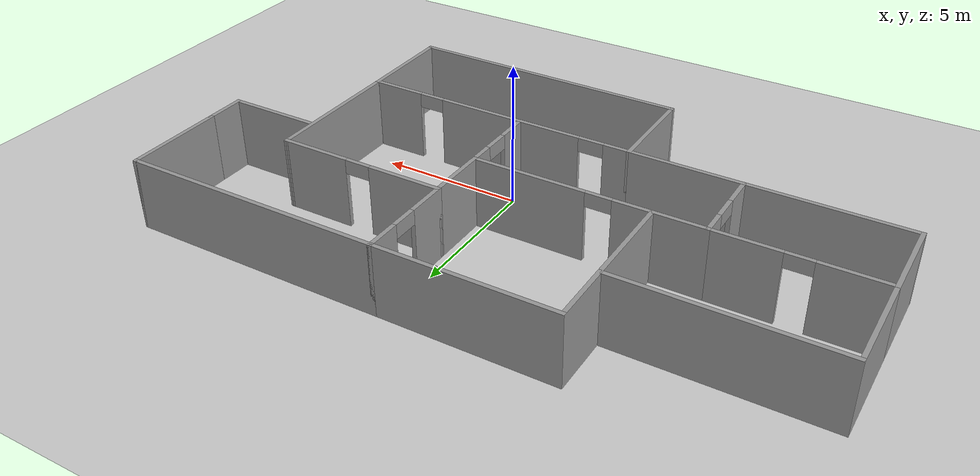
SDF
<sdf version="1.7">
 <world name="default">
  <light name="sun" type="directional">
   <pose>0 0 10 0 -0 0</pose>
   <diffuse>0.8 0.8 0.8 1</diffuse>
   <specular>0.2 0.2 0.2 1</specular>
   <attenuation>
    <range>1000</range>
    <constant>0.9</constant>
    <linear>0.01</linear>
    <quadratic>0.001</quadratic>
   </attenuation>
   <direction>-0.5 0.1 -0.9</direction>
   <spot><inner_angle>0</inner_angle><outer_angle>0</outer_angle><falloff>0</falloff></spot>
  </light>
  <model name="ground_plane">
   <static>1</static>
   <link name="link">
    <collision name="collision">
     <geometry><plane><normal>0 0 1</normal><size>100 100</size></plane></geometry>
     <surface>
      <contact><collide_bitmask>65535</collide_bitmask></contact>
      <friction><ode><mu>100</mu><mu2>50</mu2></ode></friction>
     </surface>
    </collision>
    <visual name="visual">
     <cast_shadows>0</cast_shadows>
     <geometry><plane><normal>0 0 1</normal><size>100 100</size></plane></geometry>
     <material>
      <script><uri>file://media/materials/scripts/gazebo.material</uri><name>Gazebo/Grey</name></script>
     </material>
    </visual>
   </link>
  </model>
  <gravity>0 0 -9.8</gravity>
  <magnetic_field>6e-06 2.3e-05 -4.2e-05</magnetic_field>
  <atmosphere type="adiabatic"/>
  <physics type="ode">
   <max_step_size>0.001</max_step_size>
   <real_time_factor>1</real_time_factor>
   <real_time_update_rate>1000</real_time_update_rate>
  </physics>
  <scene><ambient>0.4 0.4 0.4 1</ambient><background>0.7 0.7 0.7 1</background><shadows>1</shadows></scene>
  <spherical_coordinates>
   <surface_model>EARTH_WGS84</surface_model>
   <latitude_deg>0</latitude_deg>
   <longitude_deg>0</longitude_deg>
   <elevation>0</elevation>
   <heading_deg>0</heading_deg>
  </spherical_coordinates>
  <model name="big_house.worlds">
   <pose>-1.69749 1.44859 0 0 -0 0</pose>
   <link name="Wall_0">
    <pose>2.95249 -2.50859 0 0 -0 0</pose>
    <visual name="Wall_0_Visual_0">
     <pose>-4.51048 0 1.25 0 -0 0</pose>
     <geometry><box><size>0.979031 0.15 2.5</size></box></geometry>
     <material>
      <script><uri>file://media/materials/scripts/gazebo.material</uri><name>Gazebo/Grey</name></script>
      <ambient>1 1 1 1</ambient>
     </material>
     <meta><layer>0</layer></meta>
    </visual>
    <collision name="Wall_0_Collision_0">
     <geometry><box><size>0.979031 0.15 2.5</size></box></geometry>
     <pose>-4.51048 0 1.25 0 -0 0</pose>
    </collision>
    <visual name="Wall_0_Visual_1">
     <pose>-0.483973 0 1.25 0 -0 0</pose>
     <geometry><box><size>5.27399 0.15 2.5</size></box></geometry>
     <material>
      <script><uri>file://media/materials/scripts/gazebo.material</uri><name>Gazebo/Grey</name></script>
      <ambient>1 1 1 1</ambient>
     </material>
     <meta><layer>0</layer></meta>
    </visual>
    <collision name="Wall_0_Collision_1">
     <geometry><box><size>5.27399 0.15 2.5</size></box></geometry>
     <pose>-0.483973 0 1.25 0 -0 0</pose>
    </collision>
    <visual name="Wall_0_Visual_2">
     <pose>4.02651 0 1.25 0 -0 0</pose>
     <geometry><box><size>1.94698 0.15 2.5</size></box></geometry>
     <material>
      <script><uri>file://media/materials/scripts/gazebo.material</uri><name>Gazebo/Grey</name></script>
      <ambient>1 1 1 1</ambient>
     </material>
     <meta><layer>0</layer></meta>
    </visual>
    <collision name="Wall_0_Collision_2">
     <geometry><box><size>1.94698 0.15 2.5</size></box></geometry>
     <pose>4.02651 0 1.25 0 -0 0</pose>
    </collision>
    <visual name="Wall_0_Visual_3">
     <pose>-3.57097 0 2.25 0 -0 0</pose>
     <geometry><box><size>0.9 0.15 0.5</size></box></geometry>
     <material>
      <script><uri>file://media/materials/scripts/gazebo.material</uri><name>Gazebo/Grey</name></script>
      <ambient>1 1 1 1</ambient>
     </material>
     <meta><layer>0</layer></meta>
    </visual>
    <collision name="Wall_0_Collision_3">
     <geometry><box><size>0.9 0.15 0.5</size></box></geometry>
     <pose>-3.57097 0 2.25 0 -0 0</pose>
    </collision>
    <visual name="Wall_0_Visual_4">
     <pose>2.60302 0 2.25 0 -0 0</pose>
     <geometry><box><size>0.9 0.15 0.5</size></box></geometry>
     <material>
      <script><uri>file://media/materials/scripts/gazebo.material</uri><name>Gazebo/Grey</name></script>
      <ambient>1 1 1 1</ambient>
     </material>
     <meta><layer>0</layer></meta>
    </visual>
    <collision name="Wall_0_Collision_4">
     <geometry><box><size>0.9 0.15 0.5</size></box></geometry>
     <pose>2.60302 0 2.25 0 -0 0</pose>
    </collision>
   </link>
   <link name="Wall_1">
    <collision name="Wall_1_Collision">
     <geometry><box><size>3.5 0.15 2.5</size></box></geometry>
     <pose>0 0 1.25 0 -0 0</pose>
    </collision>
    <visual name="Wall_1_Visual">
     <pose>0 0 1.25 0 -0 0</pose>
     <geometry><box><size>3.5 0.15 2.5</size></box></geometry>
     <material>
      <script><uri>file://media/materials/scripts/gazebo.material</uri><name>Gazebo/Grey</name></script>
      <ambient>1 1 1 1</ambient>
     </material>
     <meta><layer>0</layer></meta>
    </visual>
    <pose>7.87749 -4.18359 0 0 -0 -1.5708</pose>
   </link>
   <link name="Wall_10">
    <collision name="Wall_10_Collision">
     <geometry><box><size>2.25 0.15 2.5</size></box></geometry>
     <pose>0 0 1.25 0 -0 0</pose>
    </collision>
    <visual name="Wall_10_Visual">
     <pose>0 0 1.25 0 -0 0</pose>
     <geometry><box><size>2.25 0.15 2.5</size></box></geometry>
     <material>
      <script><uri>file://media/materials/scripts/gazebo.material</uri><name>Gazebo/Grey</name></script>
      <ambient>1 1 1 1</ambient>
     </material>
     <meta><layer>0</layer></meta>
    </visual>
    <pose>2.05 1.39776 0 0 -0 1.5708</pose>
   </link>
   <link name="Wall_11">
    <pose>4.975 2.44776 0 0 -0 0</pose>
    <visual name="Wall_11_Visual_0">
     <pose>-1.68826 0 1.25 0 -0 0</pose>
     <geometry><box><size>2.62349 0.15 2.5</size></box></geometry>
     <material>
      <script><uri>file://media/materials/scripts/gazebo.material</uri><name>Gazebo/Grey</name></script>
      <ambient>1 1 1 1</ambient>
     </material>
     <meta><layer>0</layer></meta>
    </visual>
    <collision name="Wall_11_Collision_0">
     <geometry><box><size>2.62349 0.15 2.5</size></box></geometry>
     <pose>-1.68826 0 1.25 0 -0 0</pose>
    </collision>
    <visual name="Wall_11_Visual_1">
     <pose>1.76174 0 1.25 0 -0 0</pose>
     <geometry><box><size>2.47651 0.15 2.5</size></box></geometry>
     <material>
      <script><uri>file://media/materials/scripts/gazebo.material</uri><name>Gazebo/Grey</name></script>
      <ambient>1 1 1 1</ambient>
     </material>
     <meta><layer>0</layer></meta>
    </visual>
    <collision name="Wall_11_Collision_1">
     <geometry><box><size>2.47651 0.15 2.5</size></box></geometry>
     <pose>1.76174 0 1.25 0 -0 0</pose>
    </collision>
    <visual name="Wall_11_Visual_2">
     <pose>0.073486 0 2.25 0 -0 0</pose>
     <geometry><box><size>0.9 0.15 0.5</size></box></geometry>
     <material>
      <script><uri>file://media/materials/scripts/gazebo.material</uri><name>Gazebo/Grey</name></script>
      <ambient>1 1 1 1</ambient>
     </material>
     <meta><layer>0</layer></meta>
    </visual>
    <collision name="Wall_11_Collision_2">
     <geometry><box><size>0.9 0.15 0.5</size></box></geometry>
     <pose>0.073486 0 2.25 0 -0 0</pose>
    </collision>
   </link>
   <link name="Wall_12">
    <collision name="Wall_12_Collision">
     <geometry><box><size>5.1064 0.15 2.5</size></box></geometry>
     <pose>0 0 1.25 0 -0 0</pose>
    </collision>
    <visual name="Wall_12_Visual">
     <pose>0 0 1.25 0 -0 0</pose>
     <geometry><box><size>5.1064 0.15 2.5</size></box></geometry>
     <material>
      <script><uri>file://media/materials/scripts/gazebo.material</uri><name>Gazebo/Grey</name></script>
      <ambient>1 1 1 1</ambient>
     </material>
     <meta><layer>0</layer></meta>
    </visual>
    <pose>7.88874 -0.030417 0 0 -0 -1.57534</pose>
   </link>
   <link name="Wall_14">
    <collision name="Wall_14_Collision">
     <geometry><box><size>5.5 0.15 2.5</size></box></geometry>
     <pose>0 0 1.25 0 -0 0</pose>
    </collision>
    <visual name="Wall_14_Visual">
     <pose>0 0 1.25 0 -0 0</pose>
     <geometry><box><size>5.5 0.15 2.5</size></box></geometry>
     <material>
      <script><uri>file://media/materials/scripts/gazebo.material</uri><name>Gazebo/Grey</name></script>
      <ambient>1 1 1 1</ambient>
     </material>
     <meta><layer>0</layer></meta>
    </visual>
    <pose>-8.475 -2.50224 0 0 -0 3.14159</pose>
   </link>
   <link name="Wall_15">
    <collision name="Wall_15_Collision">
     <geometry><box><size>3 0.15 2.5</size></box></geometry>
     <pose>0 0 1.25 0 -0 0</pose>
    </collision>
    <visual name="Wall_15_Visual">
     <pose>0 0 1.25 0 -0 0</pose>
     <geometry><box><size>3 0.15 2.5</size></box></geometry>
     <material>
      <script><uri>file://media/materials/scripts/gazebo.material</uri><name>Gazebo/Grey</name></script>
      <ambient>1 1 1 1</ambient>
     </material>
     <meta><layer>0</layer></meta>
    </visual>
    <pose>-11.15 -1.07724 0 0 -0 1.5708</pose>
   </link>
   <link name="Wall_16">
    <pose>-8.475 0.347756 0 0 -0 0</pose>
    <visual name="Wall_16_Visual_0">
     <pose>-1.60776 0 1.25 0 -0 0</pose>
     <geometry><box><size>2.28447 0.15 2.5</size></box></geometry>
     <material>
      <script><uri>file://media/materials/scripts/gazebo.material</uri><name>Gazebo/Grey</name></script>
      <ambient>1 1 1 1</ambient>
     </material>
     <meta><layer>0</layer></meta>
    </visual>
    <collision name="Wall_16_Collision_0">
     <geometry><box><size>2.28447 0.15 2.5</size></box></geometry>
     <pose>-1.60776 0 1.25 0 -0 0</pose>
    </collision>
    <visual name="Wall_16_Visual_1">
     <pose>1.59224 0 1.25 0 -0 0</pose>
     <geometry><box><size>2.31553 0.15 2.5</size></box></geometry>
     <material>
      <script><uri>file://media/materials/scripts/gazebo.material</uri><name>Gazebo/Grey</name></script>
      <ambient>1 1 1 1</ambient>
     </material>
     <meta><layer>0</layer></meta>
    </visual>
    <collision name="Wall_16_Collision_1">
     <geometry><box><size>2.31553 0.15 2.5</size></box></geometry>
     <pose>1.59224 0 1.25 0 -0 0</pose>
    </collision>
    <visual name="Wall_16_Visual_2">
     <pose>-0.015527 0 2.25 0 -0 0</pose>
     <geometry><box><size>0.9 0.15 0.5</size></box></geometry>
     <material>
      <script><uri>file://media/materials/scripts/gazebo.material</uri><name>Gazebo/Grey</name></script>
      <ambient>1 1 1 1</ambient>
     </material>
     <meta><layer>0</layer></meta>
    </visual>
    <collision name="Wall_16_Collision_2">
     <geometry><box><size>0.9 0.15 0.5</size></box></geometry>
     <pose>-0.015527 0 2.25 0 -0 0</pose>
    </collision>
   </link>
   <link name="Wall_18">
    <collision name="Wall_18_Collision">
     <geometry><box><size>3.56083 0.15 2.5</size></box></geometry>
     <pose>0 0 1.25 0 -0 0</pose>
    </collision>
    <visual name="Wall_18_Visual">
     <pose>0 0 1.25 0 -0 0</pose>
     <geometry><box><size>3.56083 0.15 2.5</size></box></geometry>
     <material>
      <script><uri>file://media/materials/scripts/gazebo.material</uri><name>Gazebo/Grey</name></script>
      <ambient>1 1 1 1</ambient>
     </material>
     <meta><layer>0</layer></meta>
    </visual>
    <pose>-11.15 2.05317 0 0 -0 1.5708</pose>
   </link>
   <link name="Wall_2">
    <collision name="Wall_2_Collision">
     <geometry><box><size>10 0.15 2.5</size></box></geometry>
     <pose>0 0 1.25 0 -0 0</pose>
    </collision>
    <visual name="Wall_2_Visual">
     <pose>0 0 1.25 0 -0 0</pose>
     <geometry><box><size>10 0.15 2.5</size></box></geometry>
     <material>
      <script><uri>file://media/materials/scripts/gazebo.material</uri><name>Gazebo/Grey</name></script>
      <ambient>1 1 1 1</ambient>
     </material>
     <meta><layer>0</layer></meta>
    </visual>
    <pose>2.95249 -5.85859 0 0 -0 3.14159</pose>
   </link>
   <link name="Wall_22">
    <collision name="Wall_22_Collision">
     <geometry><box><size>7.25 0.15 2.5</size></box></geometry>
     <pose>0 0 1.25 0 -0 0</pose>
    </collision>
    <visual name="Wall_22_Visual">
     <pose>0 0 1.25 0 -0 0</pose>
     <geometry><box><size>7.25 0.15 2.5</size></box></geometry>
     <material>
      <script><uri>file://media/materials/scripts/gazebo.material</uri><name>Gazebo/Grey</name></script>
      <ambient>1 1 1 1</ambient>
     </material>
     <meta><layer>0</layer></meta>
    </visual>
    <pose>-7.6 3.75859 0 0 -0 0</pose>
   </link>
   <link name="Wall_23">
    <collision name="Wall_23_Collision">
     <geometry><box><size>3.5 0.15 2.5</size></box></geometry>
     <pose>0 0 1.25 0 -0 0</pose>
    </collision>
    <visual name="Wall_23_Visual">
     <pose>0 0 1.25 0 -0 0</pose>
     <geometry><box><size>3.5 0.15 2.5</size></box></geometry>
     <material>
      <script><uri>file://media/materials/scripts/gazebo.material</uri><name>Gazebo/Grey</name></script>
      <ambient>1 1 1 1</ambient>
     </material>
     <meta><layer>0</layer></meta>
    </visual>
    <pose>-4.05 2.08359 0 0 -0 -1.5708</pose>
   </link>
   <link name="Wall_25">
    <collision name="Wall_25_Collision">
     <geometry><box><size>2.25 0.15 2.5</size></box></geometry>
     <pose>0 0 1.25 0 -0 0</pose>
    </collision>
    <visual name="Wall_25_Visual">
     <pose>0 0 1.25 0 -0 0</pose>
     <geometry><box><size>2.25 0.15 2.5</size></box></geometry>
     <material>
      <script><uri>file://media/materials/scripts/gazebo.material</uri><name>Gazebo/Grey</name></script>
      <ambient>1 1 1 1</ambient>
     </material>
     <meta><layer>0</layer></meta>
    </visual>
    <pose>-4.05 4.80859 0 0 -0 1.5708</pose>
   </link>
   <link name="Wall_26">
    <collision name="Wall_26_Collision">
     <geometry><box><size>6.25 0.15 2.5</size></box></geometry>
     <pose>0 0 1.25 0 -0 0</pose>
    </collision>
    <visual name="Wall_26_Visual">
     <pose>0 0 1.25 0 -0 0</pose>
     <geometry><box><size>6.25 0.15 2.5</size></box></geometry>
     <material>
      <script><uri>file://media/materials/scripts/gazebo.material</uri><name>Gazebo/Grey</name></script>
      <ambient>1 1 1 1</ambient>
     </material>
     <meta><layer>0</layer></meta>
    </visual>
    <pose>-1 5.85859 0 0 -0 0</pose>
   </link>
   <link name="Wall_27">
    <pose>2.05 4.15317 0 0 -0 -1.5708</pose>
    <visual name="Wall_27_Visual_0">
     <pose>-1.16839 0 1.25 0 -0 0</pose>
     <geometry><box><size>1.22406 0.15 2.5</size></box></geometry>
     <material>
      <script><uri>file://media/materials/scripts/gazebo.material</uri><name>Gazebo/Grey</name></script>
      <ambient>1 1 1 1</ambient>
     </material>
     <meta><layer>0</layer></meta>
    </visual>
    <collision name="Wall_27_Collision_0">
     <geometry><box><size>1.22406 0.15 2.5</size></box></geometry>
     <pose>-1.16839 0 1.25 0 -0 0</pose>
    </collision>
    <visual name="Wall_27_Visual_1">
     <pose>1.06203 0 1.25 0 -0 0</pose>
     <geometry><box><size>1.43678 0.15 2.5</size></box></geometry>
     <material>
      <script><uri>file://media/materials/scripts/gazebo.material</uri><name>Gazebo/Grey</name></script>
      <ambient>1 1 1 1</ambient>
     </material>
     <meta><layer>0</layer></meta>
    </visual>
    <collision name="Wall_27_Collision_1">
     <geometry><box><size>1.43678 0.15 2.5</size></box></geometry>
     <pose>1.06203 0 1.25 0 -0 0</pose>
    </collision>
    <visual name="Wall_27_Visual_2">
     <pose>-0.106359 0 2.25 0 -0 0</pose>
     <geometry><box><size>0.9 0.15 0.5</size></box></geometry>
     <material>
      <script><uri>file://media/materials/scripts/gazebo.material</uri><name>Gazebo/Grey</name></script>
      <ambient>1 1 1 1</ambient>
     </material>
     <meta><layer>0</layer></meta>
    </visual>
    <collision name="Wall_27_Collision_2">
     <geometry><box><size>0.9 0.15 0.5</size></box></geometry>
     <pose>-0.106359 0 2.25 0 -0 0</pose>
    </collision>
   </link>
   <link name="Wall_29">
    <collision name="Wall_29_Collision">
     <geometry><box><size>9.25 0.15 2.5</size></box></geometry>
     <pose>0 0 1.25 0 -0 0</pose>
    </collision>
    <visual name="Wall_29_Visual">
     <pose>0 0 1.25 0 -0 0</pose>
     <geometry><box><size>9.25 0.15 2.5</size></box></geometry>
     <material>
      <script><uri>file://media/materials/scripts/gazebo.material</uri><name>Gazebo/Grey</name></script>
      <ambient>1 1 1 1</ambient>
     </material>
     <meta><layer>0</layer></meta>
    </visual>
    <pose>6.6 5.85859 0 0 -0 0</pose>
   </link>
   <link name="Wall_3">
    <collision name="Wall_3_Collision">
     <geometry><box><size>3.5 0.15 2.5</size></box></geometry>
     <pose>0 0 1.25 0 -0 0</pose>
    </collision>
    <visual name="Wall_3_Visual">
     <pose>0 0 1.25 0 -0 0</pose>
     <geometry><box><size>3.5 0.15 2.5</size></box></geometry>
     <material>
      <script><uri>file://media/materials/scripts/gazebo.material</uri><name>Gazebo/Grey</name></script>
      <ambient>1 1 1 1</ambient>
     </material>
     <meta><layer>0</layer></meta>
    </visual>
    <pose>-1.97251 -4.18359 0 0 -0 1.5708</pose>
   </link>
   <link name="Wall_33">
    <collision name="Wall_33_Collision">
     <geometry><box><size>3.5 0.15 2.5</size></box></geometry>
     <pose>0 0 1.25 0 -0 0</pose>
    </collision>
    <visual name="Wall_33_Visual">
     <pose>0 0 1.25 0 -0 0</pose>
     <geometry><box><size>3.5 0.15 2.5</size></box></geometry>
     <material>
      <script><uri>file://media/materials/scripts/gazebo.material</uri><name>Gazebo/Grey</name></script>
      <ambient>1 1 1 1</ambient>
     </material>
     <meta><layer>0</layer></meta>
    </visual>
    <pose>11.15 4.18359 0 0 -0 -1.5708</pose>
   </link>
   <link name="Wall_34">
    <collision name="Wall_34_Collision">
     <geometry><box><size>1.5 0.15 2.5</size></box></geometry>
     <pose>0 0 1.25 0 -0 0</pose>
    </collision>
    <visual name="Wall_34_Visual">
     <pose>0 0 1.25 0 -0 0</pose>
     <geometry><box><size>1.5 0.15 2.5</size></box></geometry>
     <material>
      <script><uri>file://media/materials/scripts/gazebo.material</uri><name>Gazebo/Grey</name></script>
      <ambient>1 1 1 1</ambient>
     </material>
     <meta><layer>0</layer></meta>
    </visual>
    <pose>11.15 1.83359 0 0 -0 -1.5708</pose>
   </link>
   <link name="Wall_35">
    <collision name="Wall_35_Collision">
     <geometry><box><size>3.25 0.15 2.5</size></box></geometry>
     <pose>0 0 1.25 0 -0 0</pose>
    </collision>
    <visual name="Wall_35_Visual">
     <pose>0 0 1.25 0 -0 0</pose>
     <geometry><box><size>3.25 0.15 2.5</size></box></geometry>
     <material>
      <script><uri>file://media/materials/scripts/gazebo.material</uri><name>Gazebo/Grey</name></script>
      <ambient>1 1 1 1</ambient>
     </material>
     <meta><layer>0</layer></meta>
    </visual>
    <pose>9.6 1.15859 0 0 -0 3.14159</pose>
   </link>
   <link name="Wall_5">
    <pose>2.05 -1.07724 0 0 -0 1.5708</pose>
    <visual name="Wall_5_Visual_0">
     <pose>-0.891685 0 1.25 0 -0 0</pose>
     <geometry><box><size>1.21663 0.15 2.5</size></box></geometry>
     <material>
      <script><uri>file://media/materials/scripts/gazebo.material</uri><name>Gazebo/Grey</name></script>
      <ambient>1 1 1 1</ambient>
     </material>
     <meta><layer>0</layer></meta>
    </visual>
    <collision name="Wall_5_Collision_0">
     <geometry><box><size>1.21663 0.15 2.5</size></box></geometry>
     <pose>-0.891685 0 1.25 0 -0 0</pose>
    </collision>
    <visual name="Wall_5_Visual_1">
     <pose>1.05831 0 1.25 0 -0 0</pose>
     <geometry><box><size>0.88337 0.15 2.5</size></box></geometry>
     <material>
      <script><uri>file://media/materials/scripts/gazebo.material</uri><name>Gazebo/Grey</name></script>
      <ambient>1 1 1 1</ambient>
     </material>
     <meta><layer>0</layer></meta>
    </visual>
    <collision name="Wall_5_Collision_1">
     <geometry><box><size>0.88337 0.15 2.5</size></box></geometry>
     <pose>1.05831 0 1.25 0 -0 0</pose>
    </collision>
    <visual name="Wall_5_Visual_2">
     <pose>0.16663 0 2.25 0 -0 0</pose>
     <geometry><box><size>0.9 0.15 0.5</size></box></geometry>
     <material>
      <script><uri>file://media/materials/scripts/gazebo.material</uri><name>Gazebo/Grey</name></script>
      <ambient>1 1 1 1</ambient>
     </material>
     <meta><layer>0</layer></meta>
    </visual>
    <collision name="Wall_5_Collision_2">
     <geometry><box><size>0.9 0.15 0.5</size></box></geometry>
     <pose>0.16663 0 2.25 0 -0 0</pose>
    </collision>
   </link>
   <link name="Wall_6">
    <pose>-1.875 0.347756 0 0 -0 3.14159</pose>
    <visual name="Wall_6_Visual_0">
     <pose>-2.00461 0 1.25 0 -0 0</pose>
     <geometry><box><size>3.99078 0.15 2.5</size></box></geometry>
     <material>
      <script><uri>file://media/materials/scripts/gazebo.material</uri><name>Gazebo/Grey</name></script>
      <ambient>1 1 1 1</ambient>
     </material>
     <meta><layer>0</layer></meta>
    </visual>
    <collision name="Wall_6_Collision_0">
     <geometry><box><size>3.99078 0.15 2.5</size></box></geometry>
     <pose>-2.00461 0 1.25 0 -0 0</pose>
    </collision>
    <visual name="Wall_6_Visual_1">
     <pose>2.44539 0 1.25 0 -0 0</pose>
     <geometry><box><size>3.10922 0.15 2.5</size></box></geometry>
     <material>
      <script><uri>file://media/materials/scripts/gazebo.material</uri><name>Gazebo/Grey</name></script>
      <ambient>1 1 1 1</ambient>
     </material>
     <meta><layer>0</layer></meta>
    </visual>
    <collision name="Wall_6_Collision_1">
     <geometry><box><size>3.10922 0.15 2.5</size></box></geometry>
     <pose>2.44539 0 1.25 0 -0 0</pose>
    </collision>
    <visual name="Wall_6_Visual_2">
     <pose>0.440775 0 2.25 0 -0 0</pose>
     <geometry><box><size>0.9 0.15 0.5</size></box></geometry>
     <material>
      <script><uri>file://media/materials/scripts/gazebo.material</uri><name>Gazebo/Grey</name></script>
      <ambient>1 1 1 1</ambient>
     </material>
     <meta><layer>0</layer></meta>
    </visual>
    <collision name="Wall_6_Collision_2">
     <geometry><box><size>0.9 0.15 0.5</size></box></geometry>
     <pose>0.440775 0 2.25 0 -0 0</pose>
    </collision>
   </link>
   <link name="Wall_7">
    <pose>-5.8 -1.07724 0 0 -0 -1.5708</pose>
    <visual name="Wall_7_Visual_0">
     <pose>-1.03809 0 1.25 0 -0 0</pose>
     <geometry><box><size>0.923825 0.15 2.5</size></box></geometry>
     <material>
      <script><uri>file://media/materials/scripts/gazebo.material</uri><name>Gazebo/Grey</name></script>
      <ambient>1 1 1 1</ambient>
     </material>
     <meta><layer>0</layer></meta>
    </visual>
    <collision name="Wall_7_Collision_0">
     <geometry><box><size>0.923825 0.15 2.5</size></box></geometry>
     <pose>-1.03809 0 1.25 0 -0 0</pose>
    </collision>
    <visual name="Wall_7_Visual_1">
     <pose>0.911913 0 1.25 0 -0 0</pose>
     <geometry><box><size>1.17617 0.15 2.5</size></box></geometry>
     <material>
      <script><uri>file://media/materials/scripts/gazebo.material</uri><name>Gazebo/Grey</name></script>
      <ambient>1 1 1 1</ambient>
     </material>
     <meta><layer>0</layer></meta>
    </visual>
    <collision name="Wall_7_Collision_1">
     <geometry><box><size>1.17617 0.15 2.5</size></box></geometry>
     <pose>0.911913 0 1.25 0 -0 0</pose>
    </collision>
    <visual name="Wall_7_Visual_2">
     <pose>-0.126175 0 2.25 0 -0 0</pose>
     <geometry><box><size>0.9 0.15 0.5</size></box></geometry>
     <material>
      <script><uri>file://media/materials/scripts/gazebo.material</uri><name>Gazebo/Grey</name></script>
      <ambient>1 1 1 1</ambient>
     </material>
     <meta><layer>0</layer></meta>
    </visual>
    <collision name="Wall_7_Collision_2">
     <geometry><box><size>0.9 0.15 0.5</size></box></geometry>
     <pose>-0.126175 0 2.25 0 -0 0</pose>
    </collision>
   </link>
   <link name="Wall_8">
    <collision name="Wall_8_Collision">
     <geometry><box><size>3.97749 0.15 2.5</size></box></geometry>
     <pose>0 0 1.25 0 -0 0</pose>
    </collision>
    <visual name="Wall_8_Visual">
     <pose>0 0 1.25 0 -0 0</pose>
     <geometry><box><size>3.97749 0.15 2.5</size></box></geometry>
     <material>
      <script><uri>file://media/materials/scripts/gazebo.material</uri><name>Gazebo/Grey</name></script>
      <ambient>1 1 1 1</ambient>
     </material>
     <meta><layer>0</layer></meta>
    </visual>
    <pose>-3.88626 -2.50542 0 0 -0 -0.001658</pose>
   </link>
   <static>1</static>
  </model>
 </world>
</sdf>
